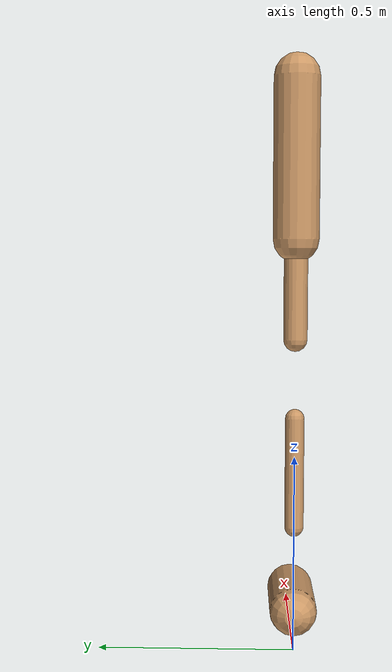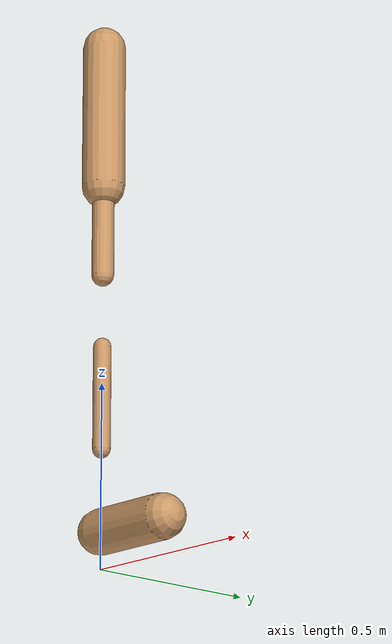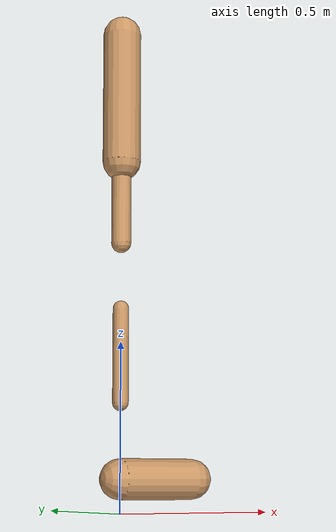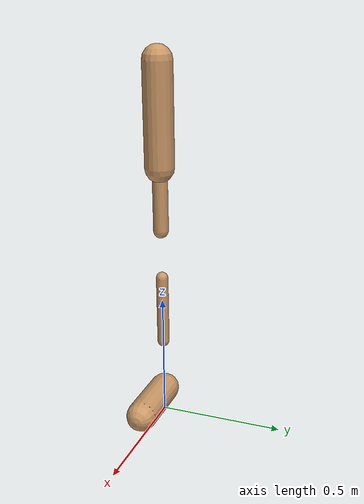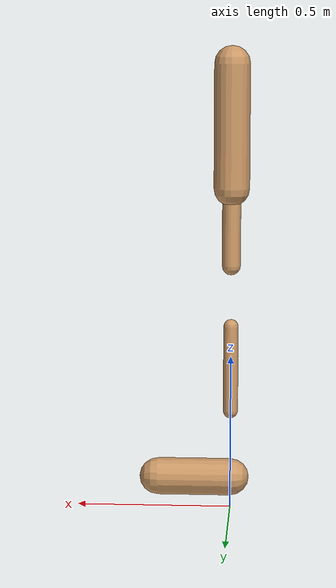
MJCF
<mujoco model="walker2d">
  <compiler angle="degree" coordinate="global" inertiafromgeom="true" />
  <default>
    <joint armature="0.01" damping=".1" limited="true" />
    <geom conaffinity="0" condim="3" contype="1" density="1000" friction="0.8 .1 .1" rgba="0.8 0.6 .4 1" />
  </default>
  <option integrator="RK4" timestep="0.002" />
  <worldbody>

    <body name="torso" pos="0 0 -0.42036996356138956">
      <joint armature="0" axis="1 0 0" damping="0" limited="false" name="ignorex" pos="0 0 0" stiffness="0" type="slide" />
      <joint armature="0" axis="0 0 1" damping="0" limited="false" name="ignorez" pos="0 0 0" ref="1.25" stiffness="0" type="slide" />
      <joint armature="0" axis="0 1 0" damping="0" limited="false" name="ignorey" pos="0 0 0" stiffness="0" type="hinge" />
      <geom fromto="0 0 1.45 0 0 1.05" name="torso_geom" size="0.057793765395643876" type="capsule" />
      <body name="thigh">
        <joint axis="0 -1 0" name="thigh_joint" pos="0 0 1.05" range="-150 0" type="hinge" />
        <geom fromto="0.0 0.0 1.05 0.0 0.0 0.7991226143185529" name="thigh_geom" size="0.029831446584061862" type="capsule" />
        <body name="leg" pos="0.0 0.0 0.19912261431855294">
          <joint axis="0 -1 0" name="leg_joint" pos="0 0 0.6" range="-150 0" type="hinge" />
          <geom fromto="0.0 0.0 0.6 0.0 0.0 0.3212473492428366" name="leg_geom" size="0.023865157267249488" type="capsule" />
          <body name="foot" pos="0.0 0.0 0.2212473492428366">
            <joint axis="0 -1 0" name="foot_joint" pos="0 0 0.1" range="-45 45" type="hinge" />
            <geom fromto="-0.0 0.0 0.1 0.23632973777614025 0.0 0.1" name="foot_geom" size="0.06031871538688155" type="capsule" />
          </body>
        </body>
      </body>

      <body name="thigh_left">
        <joint axis="0 -1 0" name="thigh_left_joint" pos="0 0 1.05" range="-150 0" type="hinge" />
        <geom fromto="0.0 0.0 1.05 0.0 0.0 0.7991226143185529" name="thigh_left_geom" rgba=".7 .3 .6 1" size="0.029831446584061862" type="capsule" />
        <body name="leg_left" pos="0.0 0.0 0.19912261431855294">
          <joint axis="0 -1 0" name="leg_left_joint" pos="0 0 0.6" range="-150 0" type="hinge" />
          <geom fromto="0.0 0.0 0.6 0.0 0.0 0.3212473492428366" name="leg_left_geom" rgba=".7 .3 .6 1" size="0.023865157267249488" type="capsule" />
          <body name="foot_left" pos="0.0 0.0 0.2212473492428366">
            <joint axis="0 -1 0" name="foot_left_joint" pos="0 0 0.1" range="-45 45" type="hinge" />
            <geom fromto="-0.0 0.0 0.1 0.23632973777614025 0.0 0.1" name="foot_left_geom" rgba=".7 .3 .6 1" size="0.06031871538688155" type="capsule" />
          </body>
        </body>
      </body>
    </body>
  </worldbody>
  <actuator>

    <motor ctrllimited="true" ctrlrange="-1.0 1.0" gear="100" joint="thigh_joint" />
    <motor ctrllimited="true" ctrlrange="-1.0 1.0" gear="100" joint="leg_joint" />
    <motor ctrllimited="true" ctrlrange="-1.0 1.0" gear="100" joint="foot_joint" />
    <motor ctrllimited="true" ctrlrange="-1.0 1.0" gear="100" joint="thigh_left_joint" />
    <motor ctrllimited="true" ctrlrange="-1.0 1.0" gear="100" joint="leg_left_joint" />
    <motor ctrllimited="true" ctrlrange="-1.0 1.0" gear="100" joint="foot_left_joint" />

  </actuator>
</mujoco>
